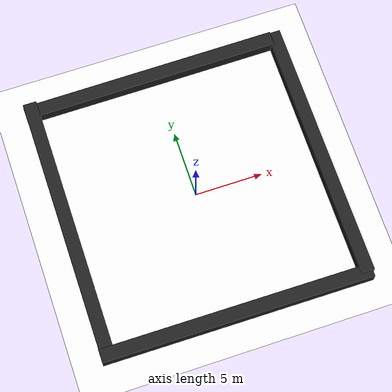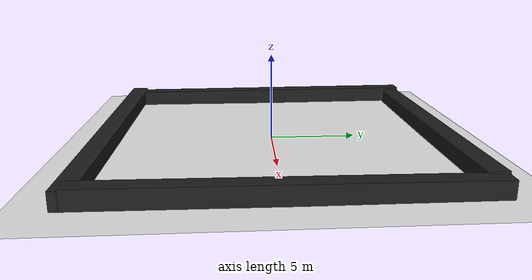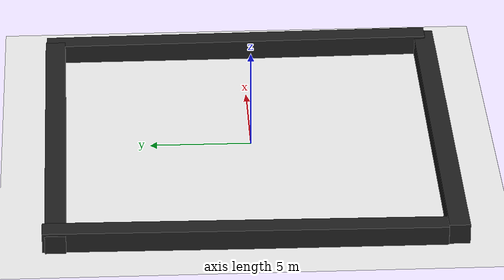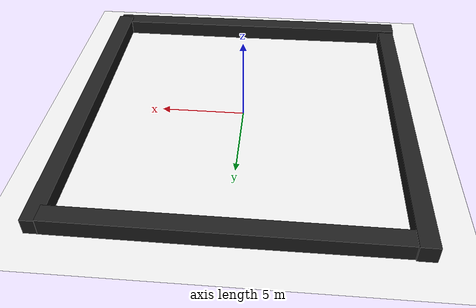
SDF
<sdf version="1.6">
 <world name="default">
  <plugin name="gazebo_ros" filename="libgazebo_ros_state.so"><ros><namespace>/gazebo</namespace></ros></plugin>
  <light name="sun" type="directional">
   <pose>0 0 10 0 -0 0</pose>
   <diffuse>0.8 0.8 0.8 1</diffuse>
   <specular>0.2 0.2 0.2 1</specular>
   <attenuation>
    <range>1000</range>
    <constant>0.9</constant>
    <linear>0.01</linear>
    <quadratic>0.001</quadratic>
   </attenuation>
   <direction>-0.5 0.1 -0.9</direction>
  </light>
  <model name="ground_plane">
   <static>1</static>
   <link name="link">
    <collision name="collision">
     <geometry><plane><normal>0 0 1</normal><size>100 100</size></plane></geometry>
     <surface><friction><ode><mu>100</mu><mu2>50</mu2></ode></friction></surface>
    </collision>
    <visual name="visual">
     <cast_shadows>0</cast_shadows>
     <geometry><plane><normal>0 0 1</normal><size>100 100</size></plane></geometry>
     <material>
      <script><uri>file://media/materials/scripts/gazebo.material</uri><name>Gazebo/White</name></script>
     </material>
    </visual>
   </link>
  </model>
  <gravity>0 0 -9.8</gravity>
  <magnetic_field>6e-06 2.3e-05 -4.2e-05</magnetic_field>
  <atmosphere type="adiabatic"/>
  <physics name="default_physics" default="0" type="ode">
   <max_step_size>0.001</max_step_size>
   <real_time_factor>1</real_time_factor>
   <real_time_update_rate>1000</real_time_update_rate>
  </physics>
  <scene><ambient>0.4 0.4 0.4 1</ambient><background>0.7 0.7 0.7 1</background><shadows>1</shadows></scene>
  <spherical_coordinates>
   <surface_model>EARTH_WGS84</surface_model>
   <latitude_deg>0</latitude_deg>
   <longitude_deg>0</longitude_deg>
   <elevation>0</elevation>
   <heading_deg>0</heading_deg>
  </spherical_coordinates>
  <model name="unit_box">
   <static>1</static>
   <pose>-9.4653 0.680117 0.472601 0.006119 2.1e-05 -0.003317</pose>
   <link name="link">
    <inertial>
     <mass>1</mass>
     <inertia>
      <ixx>0.166667</ixx>
      <ixy>0</ixy>
      <ixz>0</ixz>
      <iyy>0.166667</iyy>
      <iyz>0</iyz>
      <izz>0.166667</izz>
     </inertia>
    </inertial>
    <collision name="collision"><geometry><box><size>1 19.1773 1</size></box></geometry></collision>
    <visual name="visual">
     <geometry><box><size>1 19.1773 1</size></box></geometry>
     <material>
      <script><name>Gazebo/FlatBlack</name><uri>file://media/materials/scripts/gazebo.material</uri></script>
     </material>
    </visual>
   </link>
  </model>
  <model name="unit_box_clone">
   <static>1</static>
   <pose>9.48131 0.321622 0.472594 -0.006121 -2.2e-05 0.001897</pose>
   <link name="link">
    <inertial>
     <mass>1</mass>
     <inertia>
      <ixx>0.166667</ixx>
      <ixy>0</ixy>
      <ixz>0</ixz>
      <iyy>0.166667</iyy>
      <iyz>0</iyz>
      <izz>0.166667</izz>
     </inertia>
    </inertial>
    <collision name="collision"><geometry><box><size>1 19.6506 1</size></box></geometry></collision>
    <visual name="visual">
     <geometry><box><size>1 19.6506 1</size></box></geometry>
     <material>
      <script><name>Gazebo/FlatBlack</name><uri>file://media/materials/scripts/gazebo.material</uri></script>
     </material>
    </visual>
   </link>
  </model>
  <model name="unit_box_clone_clone">
   <static>1</static>
   <pose>-0.071697 -9.41726 0.472603 -0.006119 -2.3e-05 -1.5749</pose>
   <link name="link">
    <inertial>
     <mass>1</mass>
     <inertia>
      <ixx>0.166667</ixx>
      <ixy>0</ixy>
      <ixz>0</ixz>
      <iyy>0.166667</iyy>
      <iyz>0</iyz>
      <izz>0.166667</izz>
     </inertia>
    </inertial>
    <collision name="collision"><geometry><box><size>1 22.1756 1</size></box></geometry></collision>
    <visual name="visual">
     <geometry><box><size>1 19.8944 1</size></box></geometry>
     <material>
      <script><name>Gazebo/FlatBlack</name><uri>file://media/materials/scripts/gazebo.material</uri></script>
     </material>
    </visual>
   </link>
  </model>
  <model name="unit_box_clone_clone_0">
   <static>1</static>
   <pose>-0.376706 9.67055 0.466932 0.00612 -1.9e-05 -1.56848</pose>
   <link name="link">
    <inertial>
     <mass>1</mass>
     <inertia>
      <ixx>0.166667</ixx>
      <ixy>0</ixy>
      <ixz>0</ixz>
      <iyy>0.166667</iyy>
      <iyz>0</iyz>
      <izz>0.166667</izz>
     </inertia>
    </inertial>
    <collision name="collision"><geometry><box><size>1 19.1484 1</size></box></geometry></collision>
    <visual name="visual">
     <geometry><box><size>1 19.1484 1</size></box></geometry>
     <material>
      <script><name>Gazebo/FlatBlack</name><uri>file://media/materials/scripts/gazebo.material</uri></script>
     </material>
    </visual>
   </link>
  </model>
 </world>
</sdf>
